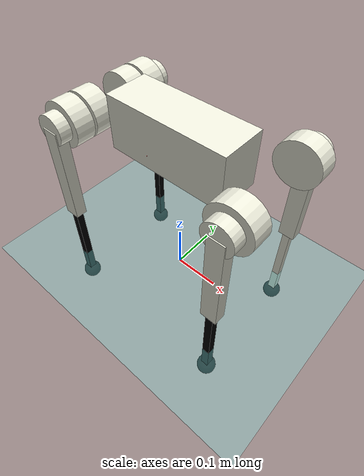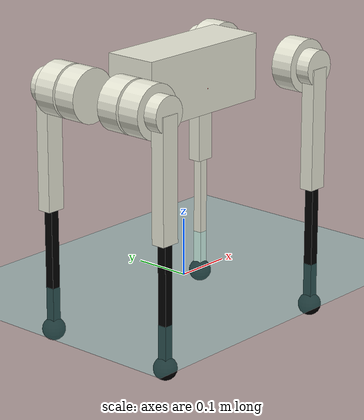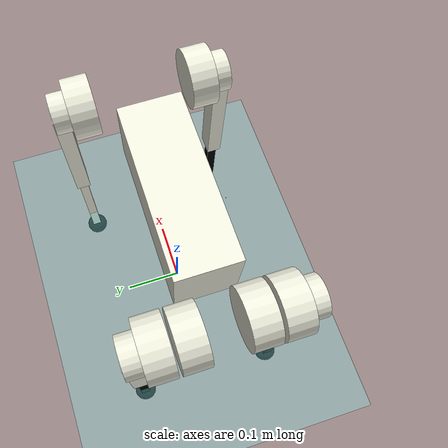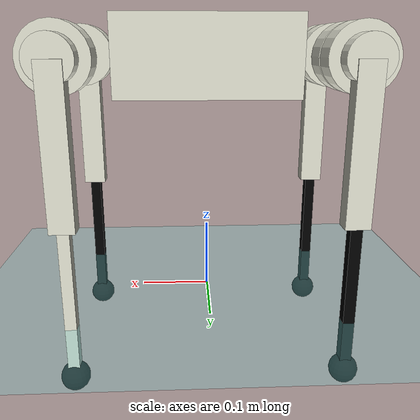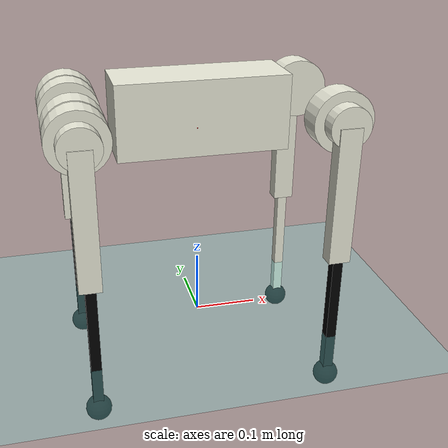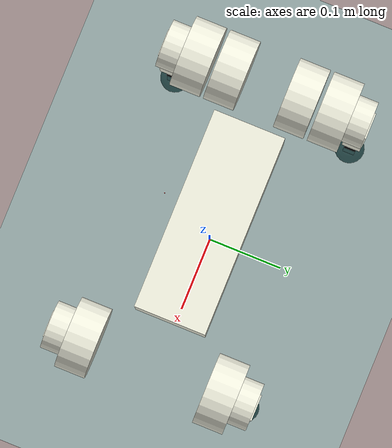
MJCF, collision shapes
<mujoco model="go1_description">
    <compiler angle="radian" meshdir="../meshes/" />
    <size njmax="500" nconmax="100" />
    <option gravity='0 0 -9.806' iterations='50' solver='Newton' timestep='0.002'/>

    <default>
        <geom contype="1" conaffinity="1" friction="0.6 0.3 0.3" rgba="0.5 0.6 0.7 1" margin="0.001" group="0"/>

        <light castshadow="false" diffuse="1 1 1"/>
        <motor ctrlrange="-33.5 33.5" ctrllimited="true"/>
        <camera fovy="60"/>
        <joint damping="0.01" armature="0.01" frictionloss="0.2" />

    </default>

    <asset>
        <mesh name="trunk" file="trunk.stl" />
        <mesh name="hip" file="hip.stl" />
        <mesh name="thigh_mirror" file="thigh_mirror.stl" />
        <mesh name="calf" file="calf.stl" />
        <mesh name="thigh" file="thigh.stl" />
    </asset>

    <asset>
        <texture type="skybox" builtin="gradient" rgb1="1.0 1.0 1.0" rgb2="1.0 1.0 1.0" width="512" height="512"/>
        <texture name="plane" type="2d" builtin="flat" rgb1="1 1 1" rgb2="1 1 1" width="512" height="512" mark="cross" markrgb="0 0 0"/>
        <material name="plane" reflectance="0.0" texture="plane" texrepeat="3 3" texuniform="true"/>
    </asset>

    <visual>
        <rgba com="0.502 1.0 0 0.5" contactforce="0.98 0.4 0.4 0.7" contactpoint="1.0 1.0 0.6 0.4"/>
        <scale com="0.2" forcewidth="0.035" contactwidth="0.10" contactheight="0.04"/>
    </visual>

    <worldbody>
        <light directional="true" diffuse=".8 .8 .8" pos="0 0 10" dir="0 0 -10"/>
        <camera name="track" mode="trackcom" pos="0 -1.3 1.6" xyaxes="1 0 0 0 0.707 0.707"/>
        <geom name='floor' type='plane' conaffinity='1' condim='3' contype='1' rgba="0.5 0.9 0.9 0.1" material='plane' pos='0 0 0' size='0 0 1'/>

        <body name="trunk" pos="0 0 0.35">
            <inertial pos="0.0116053 0.00442221 0.000106692" quat="0.0111438 0.707126 -0.00935374 0.706938" mass="4.801" diaginertia="0.0447997 0.0366257 0.0162187" />
            <joint type="free" />
            <geom type="mesh" contype="0" conaffinity="0" group="1" rgba="0.913725 0.913725 0.847059 1" mesh="trunk" />
            <geom size="0.13 0.04675 0.057" type="box" rgba="0.913725 0.913725 0.847059 1" />
            <geom size="0.0005 0.0005 0.0005" pos="-0.01592 -0.06659 -0.00617" type="box" contype="0" conaffinity="0" group="1" rgba="0.8 0 0 0" />
            <geom size="0.0005 0.0005 0.0005" pos="-0.01592 -0.06659 -0.00617" type="box" rgba="0.8 0 0 0" />
            <site name="imu" pos="0 0 0"/>

            <body name="FL_hip" pos="0.1881 0.04675 0">
                <inertial pos="-0.00406411 0.0193463 4.50733e-06" quat="0.531662 0.467526 -0.530431 0.466259" mass="0.679292" diaginertia="0.00131334 0.00122648 0.000728484" />
                <joint name="FL_hip_joint" pos="0 0 0" axis="1 0 0" limited="true" range="-0.802851 0.802851" />
                <geom type="mesh" contype="0" conaffinity="0" group="1" rgba="0.913725 0.913725 0.847059 1" mesh="hip" />
                <geom size="0.046 0.02" pos="0 0.045 0" quat="0.707107 0.707107 0 0" type="cylinder" rgba="0.913725 0.913725 0.847059 0" />
                <geom size="0.031 0.02" pos="0 0.07 0" quat="0.707107 0.707107 0 0" type="cylinder" rgba="0.913725 0.913725 0.847059 0" />

                <body name="FL_thigh" pos="0 0.08 0">
                    <inertial pos="-0.003468 -0.018947 -0.032736" quat="0.999266 -0.00067676 -0.0382978 -0.000639813" mass="0.898919" diaginertia="0.00542178 0.00514246 0.000998869" />
                    <joint name="FL_thigh_joint" pos="0 0 0" axis="0 1 0" limited="true" range="-1.0472 4.18879" />
                    <geom type="mesh" contype="0" conaffinity="0" group="1" rgba="0.913725 0.913725 0.847059 1" mesh="thigh" />
                    <geom size="0.1065 0.01225 0.017" pos="0 0 -0.1065" quat="0.707107 0 0.707107 0" type="box" rgba="0.913725 0.913725 0.847059 0" />
                    <body name="FL_calf" pos="0 0 -0.213">
                        <inertial pos="0.00455603 0.0009473 -0.147239" quat="0.762045 0.00970173 0.0180098 0.647201" mass="0.218015" diaginertia="0.00399678 0.00398122 3.99428e-05" />
                        <joint name="FL_calf_joint" pos="0 0 0" axis="0 1 0" limited="true" range="-2.69653 -0.916298" />
                        <geom type="mesh" contype="0" conaffinity="0" group="1" rgba="0 0 0 1" mesh="calf" />
                        <geom size="0.1065 0.008 0.008" pos="0 0 -0.1065" quat="0.707107 0 0.707107 0" type="box" rgba="0.913725 0.913725 0.847059 0" />
                        <geom size="0.01" pos="0 0 -0.213" contype="0" conaffinity="0" group="1" rgba="0 0 0 1" />
                        <geom size="0.02" pos="0 0 -0.213" rgba="0 0 0 1" />
                    </body>
                </body>
            </body>

            <body name="FR_hip" pos="0.1881 -0.04675 0">
                <inertial pos="-0.00406411 -0.0193463 4.50733e-06" quat="0.467526 0.531662 -0.466259 0.530431" mass="0.679292" diaginertia="0.00131334 0.00122648 0.000728484" />
                <joint name="FR_hip_joint" pos="0 0 0" axis="1 0 0" limited="true" range="-0.802851 0.802851" />
                <geom quat="0 1 0 0" type="mesh" contype="0" conaffinity="0" group="1" rgba="0.913725 0.913725 0.847059 1" mesh="hip" />
                <geom size="0.046 0.02" pos="0 -0.045 0" quat="0.707107 0.707107 0 0" type="cylinder" rgba="0.913725 0.913725 0.847059 0" />
                <geom size="0.031 0.02" pos="0 -0.07 0" quat="0.707107 0.707107 0 0" type="cylinder" rgba="0.913725 0.913725 0.847059 0" />

                <body name="FR_thigh" pos="0 -0.08 0">
                    <inertial pos="-0.003468 0.018947 -0.032736" quat="0.999266 0.00067676 -0.0382978 0.000639813" mass="0.898919" diaginertia="0.00542178 0.00514246 0.000998869" />
                    <joint name="FR_thigh_joint" pos="0 0 0" axis="0 1 0" limited="true" range="-1.0472 4.18879" />
                    <geom type="mesh" contype="0" conaffinity="0" group="1" rgba="0.913725 0.913725 0.847059 1" mesh="thigh_mirror" />
                    <geom size="0.1065 0.01225 0.017" pos="0 0 -0.1065" quat="0.707107 0 0.707107 0" type="box" rgba="0.913725 0.913725 0.847059 0" />
                    <body name="FR_calf" pos="0 0 -0.213">
                        <inertial pos="0.00455603 0.0009473 -0.147239" quat="0.762045 0.00970173 0.0180098 0.647201" mass="0.218015" diaginertia="0.00399678 0.00398122 3.99428e-05" />
                        <joint name="FR_calf_joint" pos="0 0 0" axis="0 1 0" limited="true" range="-2.69653 -0.916298" />
                        <geom type="mesh" contype="0" conaffinity="0" group="1" rgba="0 0 0 1" mesh="calf" />
                        <geom size="0.1065 0.008 0.008" pos="0 0 -0.1065" quat="0.707107 0 0.707107 0" type="box" rgba="0 0 0 0" />
                        <geom size="0.01" pos="0 0 -0.213" contype="0" conaffinity="0" group="1" rgba="0 0 0 1" />
                        <geom size="0.02" pos="0 0 -0.213" rgba="0 0 0 1" />
                    </body>
                </body>
            </body>

            <body name="RL_hip" pos="-0.1881 0.04675 0">
                <inertial pos="0.00406411 0.0193463 4.50733e-06" quat="0.466259 0.530431 -0.467526 0.531662" mass="0.679292" diaginertia="0.00131334 0.00122648 0.000728484" />
                <joint name="RL_hip_joint" pos="0 0 0" axis="1 0 0" limited="true" range="-0.802851 0.802851"  />
                <geom quat="0 0 1 0" type="mesh" contype="0" conaffinity="0" group="1" rgba="0.913725 0.913725 0.847059 1" mesh="hip" />
                <geom size="0.046 0.02" quat="0.707107 0.707107 0 0" type="cylinder" rgba="0.913725 0.913725 0.847059 1" />
                <geom size="0.046 0.02" pos="0 0.045 0" quat="0.707107 0.707107 0 0" type="cylinder" rgba="0.913725 0.913725 0.847059 0" />
                <geom size="0.031 0.02" pos="0 0.07 0" quat="0.707107 0.707107 0 0" type="cylinder" rgba="0.913725 0.913725 0.847059 0" />

                <body name="RL_thigh" pos="0 0.08 0">
                    <inertial pos="-0.003468 -0.018947 -0.032736" quat="0.999266 -0.00067676 -0.0382978 -0.000639813" mass="0.898919" diaginertia="0.00542178 0.00514246 0.000998869" />
                    <joint name="RL_thigh_joint" pos="0 0 0" axis="0 1 0" limited="true" range="-1.0472 4.18879" />
                    <geom type="mesh" contype="0" conaffinity="0" group="1" rgba="0.913725 0.913725 0.847059 1" mesh="thigh" />
                    <geom size="0.1065 0.01225 0.017" pos="0 0 -0.1065" quat="0.707107 0 0.707107 0" type="box" rgba="0.913725 0.913725 0.847059 0" />
                    <body name="RL_calf" pos="0 0 -0.213">
                        <inertial pos="0.00455603 0.0009473 -0.147239" quat="0.762045 0.00970173 0.0180098 0.647201" mass="0.218015" diaginertia="0.00399678 0.00398122 3.99428e-05" />
                        <joint name="RL_calf_joint" pos="0 0 0" axis="0 1 0" limited="true" range="-2.69653 -0.916298" />
                        <geom type="mesh" contype="0" conaffinity="0" group="1" rgba="0 0 0 1" mesh="calf" />
                        <geom size="0.1065 0.008 0.008" pos="0 0 -0.1065" quat="0.707107 0 0.707107 0" type="box" rgba="0 0 0 0" />
                        <geom size="0.01" pos="0 0 -0.213" contype="0" conaffinity="0" group="1" rgba="0 0 0 1" />
                        <geom size="0.02" pos="0 0 -0.213" rgba="0 0 0 1" />
                    </body>
                </body>
            </body>

            <body name="RR_hip" pos="-0.1881 -0.04675 0">
                <inertial pos="0.00406411 -0.0193463 4.50733e-06" quat="0.530431 0.466259 -0.531662 0.467526" mass="0.679292" diaginertia="0.00131334 0.00122648 0.000728484" />
                <joint name="RR_hip_joint" pos="0 0 0" axis="1 0 0" limited="true" range="-0.802851 0.802851" />
                <geom quat="0 0 0 -1" type="mesh" contype="0" conaffinity="0" group="1" rgba="0.913725 0.913725 0.847059 1" mesh="hip" />
                <geom size="0.046 0.02" quat="0.707107 0.707107 0 0" type="cylinder" rgba="0.913725 0.913725 0.847059 1" />
                <geom size="0.046 0.02" pos="0 -0.045 0" quat="0.707107 0.707107 0 0" type="cylinder" rgba="0.913725 0.913725 0.847059 0" />
                <geom size="0.031 0.02" pos="0 -0.07 0" quat="0.707107 0.707107 0 0" type="cylinder" rgba="0.913725 0.913725 0.847059 0" />

                <body name="RR_thigh" pos="0 -0.08 0">
                    <inertial pos="-0.003468 0.018947 -0.032736" quat="0.999266 0.00067676 -0.0382978 0.000639813" mass="0.898919" diaginertia="0.00542178 0.00514246 0.000998869" />
                    <joint name="RR_thigh_joint" pos="0 0 0" axis="0 1 0" limited="true" range="-1.0472 4.18879" />
                    <geom type="mesh" contype="0" conaffinity="0" group="1" rgba="0.913725 0.913725 0.847059 1" mesh="thigh_mirror" />
                    <geom size="0.1065 0.01225 0.017" pos="0 0 -0.1065" quat="0.707107 0 0.707107 0" type="box" rgba="0.913725 0.913725 0.847059 0" />
                    <body name="RR_calf" pos="0 0 -0.213">
                        <inertial pos="0.00455603 0.0009473 -0.147239" quat="0.762045 0.00970173 0.0180098 0.647201" mass="0.218015" diaginertia="0.00399678 0.00398122 3.99428e-05" />
                        <joint name="RR_calf_joint" pos="0 0 0" axis="0 1 0" limited="true" range="-2.69653 -0.916298" />
                        <geom type="mesh" contype="0" conaffinity="0" group="1" rgba="0 0 0 1" mesh="calf" />
                        <geom size="0.1065 0.008 0.008" pos="0 0 -0.1065" quat="0.707107 0 0.707107 0" type="box" rgba="0 0 0 0" />
                        <geom size="0.01" pos="0 0 -0.213" contype="0" conaffinity="0" group="1" rgba="0 0 0 1" />
                        <geom size="0.02" pos="0 0 -0.213" rgba="0 0 0 1" />
                    </body>
                </body>
            </body>
        </body>
    </worldbody>

 	<actuator>
		<motor name="FL_hip_joint" joint="FL_hip_joint" gear="1"/>
		<motor name="FL_thigh_joint" joint="FL_thigh_joint" gear="1"/>
		<motor name="FL_calf_joint" joint="FL_calf_joint" gear="1"/>

		<motor name="FR_hip_joint" joint="FR_hip_joint" gear="1"/>
		<motor name="FR_thigh_joint" joint="FR_thigh_joint" gear="1"/>
		<motor name="FR_calf_joint" joint="FR_calf_joint" gear="1"/>

		<motor name="RL_hip_joint" joint="RL_hip_joint" gear="1"/>
		<motor name="RL_thigh_joint" joint="RL_thigh_joint" gear="1"/>
		<motor name="RL_calf_joint" joint="RL_calf_joint" gear="1"/>

		<motor name="RR_hip_joint" joint="RR_hip_joint" gear="1"/>
		<motor name="RR_thigh_joint" joint="RR_thigh_joint" gear="1"/>
		<motor name="RR_calf_joint" joint="RR_calf_joint" gear="1"/>
    </actuator>

    <sensor>
        <actuatorpos name='FL_hip_joint_p'  actuator='FL_hip_joint' user='13'/>
		<actuatorpos name='FL_thigh_joint_p'  actuator='FL_thigh_joint' user='13'/>
		<actuatorpos name='FL_calf_joint_p'  actuator='FL_calf_joint' user='13'/>

		<actuatorpos name='FR_hip_joint_p'  actuator='FR_hip_joint' user='13'/>
		<actuatorpos name='FR_thigh_joint_p'  actuator='FR_thigh_joint' user='13'/>
		<actuatorpos name='FR_calf_joint_p'  actuator='FR_calf_joint' user='13'/>

		<actuatorpos name='RL_hip_joint_p'  actuator='RL_hip_joint' user='13'/>
		<actuatorpos name='RL_thigh_joint_p'  actuator='RL_thigh_joint' user='13'/>
		<actuatorpos name='RL_calf_joint_p'  actuator='RL_calf_joint' user='13'/>

		<actuatorpos name='RR_hip_joint_p'  actuator='RR_hip_joint' user='13'/>
		<actuatorpos name='RR_thigh_joint_p'  actuator='RR_thigh_joint' user='13'/>
		<actuatorpos name='RR_calf_joint_p'  actuator='RR_calf_joint' user='13'/>

        <actuatorvel name='FL_hip_joint_v'  actuator='FL_hip_joint' user='13'/>
        <actuatorvel name='FL_thigh_joint_v'  actuator='FL_thigh_joint' user='13'/>
        <actuatorvel name='FL_calf_joint_v'  actuator='FL_calf_joint' user='13'/>

        <actuatorvel name='FR_hip_joint_v'  actuator='FR_hip_joint' user='13'/>
        <actuatorvel name='FR_thigh_joint_v'  actuator='FR_thigh_joint' user='13'/>
        <actuatorvel name='FR_calf_joint_v'  actuator='FR_calf_joint' user='13'/>

        <actuatorvel name='RL_hip_joint_v'  actuator='RL_hip_joint' user='13'/>
        <actuatorvel name='RL_thigh_joint_v'  actuator='RL_thigh_joint' user='13'/>
        <actuatorvel name='RL_calf_joint_v'  actuator='RL_calf_joint' user='13'/>

        <actuatorvel name='RR_hip_joint_v'  actuator='RR_hip_joint' user='13'/>
        <actuatorvel name='RR_thigh_joint_v'  actuator='RR_thigh_joint' user='13'/>
        <actuatorvel name='RR_calf_joint_v'  actuator='RR_calf_joint' user='13'/>

		<actuatorfrc name='FL_hip_joint_f'  actuator='FL_hip_joint'  user='13' noise='1e-3'/>
		<actuatorfrc name='FL_thigh_joint_f'  actuator='FL_thigh_joint'  user='13' noise='1e-3'/>
		<actuatorfrc name='FL_calf_joint_f'  actuator='FL_calf_joint'  user='13' noise='1e-3'/>

		<actuatorfrc name='FR_hip_joint_f'  actuator='FR_hip_joint'  user='13' noise='1e-3'/>
		<actuatorfrc name='FR_thigh_joint_f'  actuator='FR_thigh_joint'  user='13' noise='1e-3'/>
		<actuatorfrc name='FR_calf_joint_f'  actuator='FR_calf_joint'  user='13' noise='1e-3'/>

		<actuatorfrc name='RL_hip_joint_f'  actuator='RL_hip_joint'  user='13' noise='1e-3'/>
		<actuatorfrc name='RL_thigh_joint_f'  actuator='RL_thigh_joint'  user='13' noise='1e-3'/>
		<actuatorfrc name='RL_calf_joint_f'  actuator='RL_calf_joint'  user='13' noise='1e-3'/>

        <actuatorfrc name='RR_hip_joint_f'  actuator='RR_hip_joint'  user='13' noise='1e-3'/>
		<actuatorfrc name='RR_thigh_joint_f'  actuator='RR_thigh_joint'  user='13' noise='1e-3'/>
		<actuatorfrc name='RR_calf_joint_f'  actuator='RR_calf_joint'  user='13' noise='1e-3'/>

        <framequat     name='orientation' objtype='site' noise='0.001' objname='imu'/>
        <framepos      name='position' objtype='site' noise='0.001' objname='imu'/>
        <gyro          name='angular-velocity'    site='imu' noise='0.005'/>
        <velocimeter   name='linear-velocity'     site='imu' noise='0.001'/>
        <accelerometer name='linear-acceleration' site='imu' noise='0.005'/>
        <magnetometer  name='magnetometer'        site='imu'/>

    </sensor>
</mujoco>
